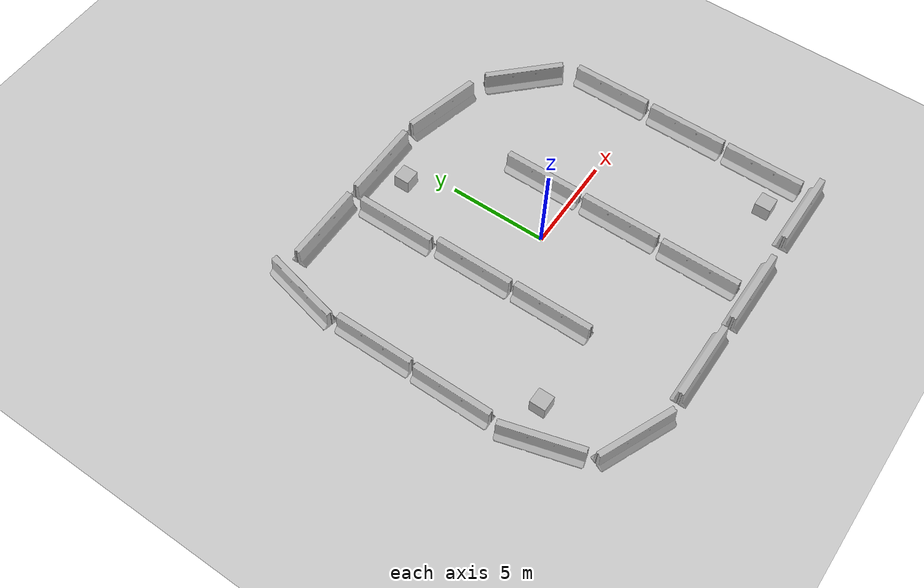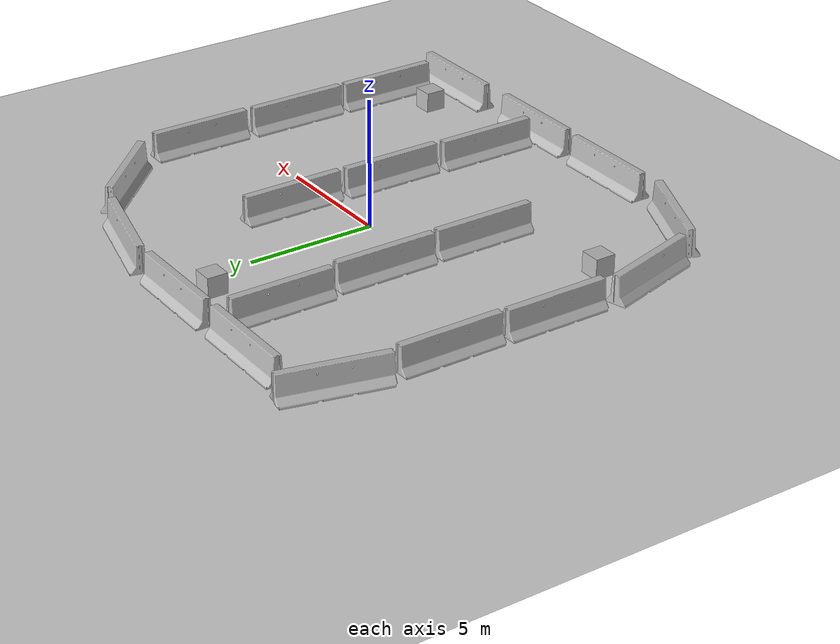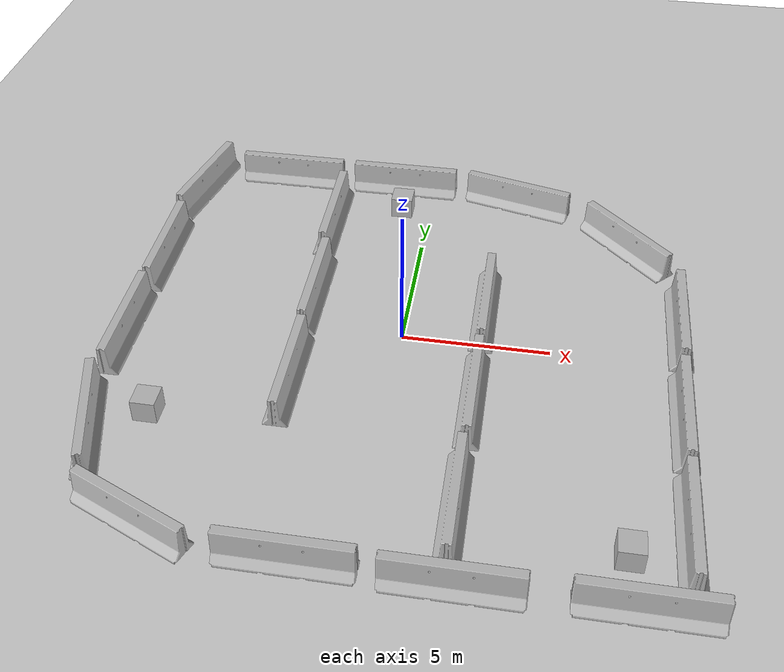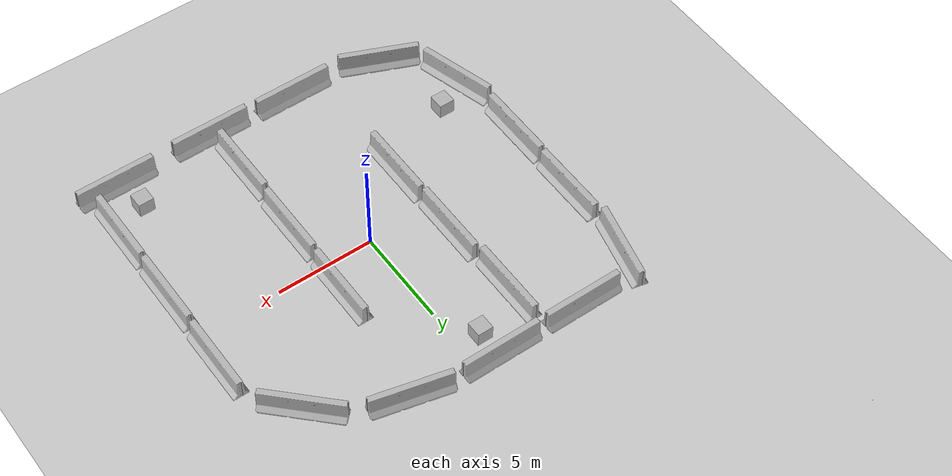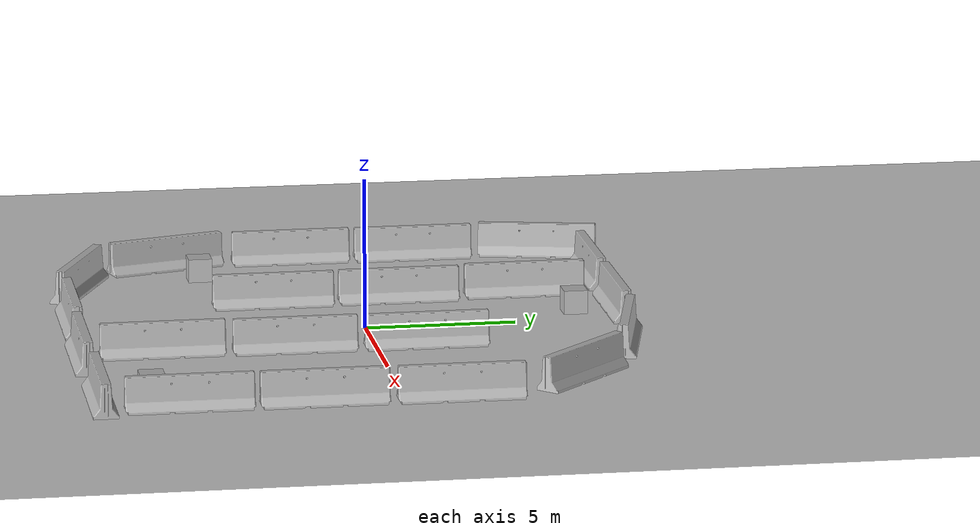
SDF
<sdf version="1.6">
 <world name="default">
  <light name="sun" type="directional">
   <pose>0 0 10 0 -0 0</pose>
   <diffuse>0.8 0.8 0.8 1</diffuse>
   <specular>0.2 0.2 0.2 1</specular>
   <attenuation>
    <range>1000</range>
    <constant>0.9</constant>
    <linear>0.01</linear>
    <quadratic>0.001</quadratic>
   </attenuation>
   <direction>-0.5 0.1 -0.9</direction>
  </light>
  <model name="ground_plane">
   <static>1</static>
   <link name="link">
    <collision name="collision">
     <geometry><plane><normal>0 0 1</normal><size>100 100</size></plane></geometry>
     <surface>
      <contact><collide_bitmask>65535</collide_bitmask></contact>
      <friction><ode><mu>100</mu><mu2>50</mu2></ode></friction>
     </surface>
    </collision>
    <visual name="visual">
     <cast_shadows>0</cast_shadows>
     <geometry><plane><normal>0 0 1</normal><size>100 100</size></plane></geometry>
     <material>
      <script><uri>file://media/materials/scripts/gazebo.material</uri><name>Gazebo/Grey</name></script>
     </material>
    </visual>
   </link>
  </model>
  <gravity>0 0 -9.8</gravity>
  <magnetic_field>6e-06 2.3e-05 -4.2e-05</magnetic_field>
  <atmosphere type="adiabatic"/>
  <physics name="default_physics" default="0" type="ode">
   <max_step_size>0.001</max_step_size>
   <real_time_factor>1</real_time_factor>
   <real_time_update_rate>1000</real_time_update_rate>
  </physics>
  <scene><ambient>0.4 0.4 0.4 1</ambient><background>0.7 0.7 0.7 1</background><shadows>1</shadows></scene>
  <audio><device>default</device></audio>
  <spherical_coordinates>
   <surface_model>EARTH_WGS84</surface_model>
   <latitude_deg>0</latitude_deg>
   <longitude_deg>0</longitude_deg>
   <elevation>0</elevation>
   <heading_deg>0</heading_deg>
  </spherical_coordinates>
  <model name="ball_bearing">
   <link name="link">
    <pose>0 0 0.003 0 -0 0</pose>
    <inertial>
     <mass>0.0011</mass>
     <inertia>
      <ixx>3.96e-09</ixx>
      <ixy>0</ixy>
      <ixz>0</ixz>
      <iyy>3.96e-09</iyy>
      <iyz>0</iyz>
      <izz>3.96e-09</izz>
     </inertia>
    </inertial>
    <collision name="collision">
     <geometry><sphere><radius>0.003</radius></sphere></geometry>
     <surface>
      <contact>
       <poissons_ratio>0.305</poissons_ratio>
       <elastic_modulus>2e+11</elastic_modulus>
       <ode><kp>100000</kp><kd>100</kd><max_vel>100</max_vel><min_depth>0.001</min_depth></ode>
      </contact>
      <friction>
       <torsional>
        <coefficient>1</coefficient>
        <use_patch_radius>0</use_patch_radius>
        <surface_radius>0.01</surface_radius>
       </torsional>
      </friction>
     </surface>
    </collision>
    <visual name="visual">
     <geometry><sphere><radius>0.003</radius></sphere></geometry>
     <material>
      <script><uri>file://media/materials/scripts/gazebo.material</uri><name>Gazebo/Grey</name></script>
     </material>
    </visual>
    <velocity_decay><linear>0</linear><angular>0.005</angular></velocity_decay>
   </link>
   <pose>5.39381 -8.07833 -0.001 0 -0 0</pose>
  </model>
  <model name="ball_bearing_0">
   <link name="link">
    <pose>0 0 0.003 0 -0 0</pose>
    <inertial>
     <mass>0.0011</mass>
     <inertia>
      <ixx>3.96e-09</ixx>
      <ixy>0</ixy>
      <ixz>0</ixz>
      <iyy>3.96e-09</iyy>
      <iyz>0</iyz>
      <izz>3.96e-09</izz>
     </inertia>
    </inertial>
    <collision name="collision">
     <geometry><sphere><radius>0.003</radius></sphere></geometry>
     <surface>
      <contact>
       <poissons_ratio>0.305</poissons_ratio>
       <elastic_modulus>2e+11</elastic_modulus>
       <ode><kp>100000</kp><kd>100</kd><max_vel>100</max_vel><min_depth>0.001</min_depth></ode>
      </contact>
      <friction>
       <torsional>
        <coefficient>1</coefficient>
        <use_patch_radius>0</use_patch_radius>
        <surface_radius>0.01</surface_radius>
       </torsional>
      </friction>
     </surface>
    </collision>
    <visual name="visual">
     <geometry><sphere><radius>0.003</radius></sphere></geometry>
     <material>
      <script><uri>file://media/materials/scripts/gazebo.material</uri><name>Gazebo/Grey</name></script>
     </material>
    </visual>
    <velocity_decay><linear>0</linear><angular>0.005</angular></velocity_decay>
   </link>
   <pose>-12.9691 19.8611 -0.001 0 -0 0</pose>
  </model>
  <model name="jersey_barrier">
   <static>1</static>
   <link name="link">
    <visual name="visual">
     <geometry><mesh><uri>model://jersey_barrier/meshes/jersey_barrier.dae</uri></mesh></geometry>
    </visual>
    <collision name="upright">
     <pose>0 0 0.5715 0 -0 0</pose>
     <geometry><box><size>4.06542 0.3063 1.143</size></box></geometry>
    </collision>
    <collision name="base">
     <pose>0 0 0.032258 0 -0 0</pose>
     <geometry><box><size>4.06542 0.8107 0.064516</size></box></geometry>
    </collision>
    <collision name="base2">
     <pose>0 0 0.1 0 -0 0</pose>
     <geometry><box><size>4.06542 0.65 0.1</size></box></geometry>
    </collision>
    <collision name="base3">
     <pose>0 0 0.2 0 -0 0</pose>
     <geometry><box><size>4.06542 0.5 0.1</size></box></geometry>
    </collision>
    <collision name="left-angle">
     <pose>0 -0.224 0.2401 0.9 -0 0</pose>
     <geometry><box><size>4.06542 0.5 0.064516</size></box></geometry>
    </collision>
    <collision name="right-angle">
     <pose>0 0.224 0.2401 -0.9 0 0</pose>
     <geometry><box><size>4.06542 0.5 0.064516</size></box></geometry>
    </collision>
   </link>
   <pose>-5.69339 8.57902 0 0 -0 0</pose>
  </model>
  <model name="jersey_barrier_0_clone">
   <static>1</static>
   <link name="link">
    <visual name="visual">
     <geometry><mesh><uri>model://jersey_barrier/meshes/jersey_barrier.dae</uri></mesh></geometry>
    </visual>
    <collision name="upright">
     <pose>0 0 0.5715 0 -0 0</pose>
     <geometry><box><size>4.06542 0.3063 1.143</size></box></geometry>
    </collision>
    <collision name="base">
     <pose>0 0 0.032258 0 -0 0</pose>
     <geometry><box><size>4.06542 0.8107 0.064516</size></box></geometry>
    </collision>
    <collision name="base2">
     <pose>0 0 0.1 0 -0 0</pose>
     <geometry><box><size>4.06542 0.65 0.1</size></box></geometry>
    </collision>
    <collision name="base3">
     <pose>0 0 0.2 0 -0 0</pose>
     <geometry><box><size>4.06542 0.5 0.1</size></box></geometry>
    </collision>
    <collision name="left-angle">
     <pose>0 -0.224 0.2401 0.9 -0 0</pose>
     <geometry><box><size>4.06542 0.5 0.064516</size></box></geometry>
    </collision>
    <collision name="right-angle">
     <pose>0 0.224 0.2401 -0.9 0 0</pose>
     <geometry><box><size>4.06542 0.5 0.064516</size></box></geometry>
    </collision>
   </link>
   <pose>-1.16505 8.58859 0 0 -0 0</pose>
  </model>
  <model name="jersey_barrier_0_clone_0">
   <static>1</static>
   <link name="link">
    <visual name="visual">
     <geometry><mesh><uri>model://jersey_barrier/meshes/jersey_barrier.dae</uri></mesh></geometry>
    </visual>
    <collision name="upright">
     <pose>0 0 0.5715 0 -0 0</pose>
     <geometry><box><size>4.06542 0.3063 1.143</size></box></geometry>
    </collision>
    <collision name="base">
     <pose>0 0 0.032258 0 -0 0</pose>
     <geometry><box><size>4.06542 0.8107 0.064516</size></box></geometry>
    </collision>
    <collision name="base2">
     <pose>0 0 0.1 0 -0 0</pose>
     <geometry><box><size>4.06542 0.65 0.1</size></box></geometry>
    </collision>
    <collision name="base3">
     <pose>0 0 0.2 0 -0 0</pose>
     <geometry><box><size>4.06542 0.5 0.1</size></box></geometry>
    </collision>
    <collision name="left-angle">
     <pose>0 -0.224 0.2401 0.9 -0 0</pose>
     <geometry><box><size>4.06542 0.5 0.064516</size></box></geometry>
    </collision>
    <collision name="right-angle">
     <pose>0 0.224 0.2401 -0.9 0 0</pose>
     <geometry><box><size>4.06542 0.5 0.064516</size></box></geometry>
    </collision>
   </link>
   <pose>3.34349 8.14189 0 0 0 -0.238111</pose>
  </model>
  <model name="jersey_barrier_0_clone_1">
   <static>1</static>
   <link name="link">
    <visual name="visual">
     <geometry><mesh><uri>model://jersey_barrier/meshes/jersey_barrier.dae</uri></mesh></geometry>
    </visual>
    <collision name="upright">
     <pose>0 0 0.5715 0 -0 0</pose>
     <geometry><box><size>4.06542 0.3063 1.143</size></box></geometry>
    </collision>
    <collision name="base">
     <pose>0 0 0.032258 0 -0 0</pose>
     <geometry><box><size>4.06542 0.8107 0.064516</size></box></geometry>
    </collision>
    <collision name="base2">
     <pose>0 0 0.1 0 -0 0</pose>
     <geometry><box><size>4.06542 0.65 0.1</size></box></geometry>
    </collision>
    <collision name="base3">
     <pose>0 0 0.2 0 -0 0</pose>
     <geometry><box><size>4.06542 0.5 0.1</size></box></geometry>
    </collision>
    <collision name="left-angle">
     <pose>0 -0.224 0.2401 0.9 -0 0</pose>
     <geometry><box><size>4.06542 0.5 0.064516</size></box></geometry>
    </collision>
    <collision name="right-angle">
     <pose>0 0.224 0.2401 -0.9 0 0</pose>
     <geometry><box><size>4.06542 0.5 0.064516</size></box></geometry>
    </collision>
   </link>
   <pose>7.52123 5.9268 0 0 0 -0.785398</pose>
  </model>
  <model name="jersey_barrier_0_clone_1_clone">
   <static>1</static>
   <link name="link">
    <visual name="visual">
     <geometry><mesh><uri>model://jersey_barrier/meshes/jersey_barrier.dae</uri></mesh></geometry>
    </visual>
    <collision name="upright">
     <pose>0 0 0.5715 0 -0 0</pose>
     <geometry><box><size>4.06542 0.3063 1.143</size></box></geometry>
    </collision>
    <collision name="base">
     <pose>0 0 0.032258 0 -0 0</pose>
     <geometry><box><size>4.06542 0.8107 0.064516</size></box></geometry>
    </collision>
    <collision name="base2">
     <pose>0 0 0.1 0 -0 0</pose>
     <geometry><box><size>4.06542 0.65 0.1</size></box></geometry>
    </collision>
    <collision name="base3">
     <pose>0 0 0.2 0 -0 0</pose>
     <geometry><box><size>4.06542 0.5 0.1</size></box></geometry>
    </collision>
    <collision name="left-angle">
     <pose>0 -0.224 0.2401 0.9 -0 0</pose>
     <geometry><box><size>4.06542 0.5 0.064516</size></box></geometry>
    </collision>
    <collision name="right-angle">
     <pose>0 0.224 0.2401 -0.9 0 0</pose>
     <geometry><box><size>4.06542 0.5 0.064516</size></box></geometry>
    </collision>
   </link>
   <pose>-6.44298 -8.84455 0 0 0 -0.404872</pose>
  </model>
  <model name="jersey_barrier_0_clone_1_clone_1">
   <static>1</static>
   <link name="link">
    <visual name="visual">
     <geometry><mesh><uri>model://jersey_barrier/meshes/jersey_barrier.dae</uri></mesh></geometry>
    </visual>
    <collision name="upright">
     <pose>0 0 0.5715 0 -0 0</pose>
     <geometry><box><size>4.06542 0.3063 1.143</size></box></geometry>
    </collision>
    <collision name="base">
     <pose>0 0 0.032258 0 -0 0</pose>
     <geometry><box><size>4.06542 0.8107 0.064516</size></box></geometry>
    </collision>
    <collision name="base2">
     <pose>0 0 0.1 0 -0 0</pose>
     <geometry><box><size>4.06542 0.65 0.1</size></box></geometry>
    </collision>
    <collision name="base3">
     <pose>0 0 0.2 0 -0 0</pose>
     <geometry><box><size>4.06542 0.5 0.1</size></box></geometry>
    </collision>
    <collision name="left-angle">
     <pose>0 -0.224 0.2401 0.9 -0 0</pose>
     <geometry><box><size>4.06542 0.5 0.064516</size></box></geometry>
    </collision>
    <collision name="right-angle">
     <pose>0 0.224 0.2401 -0.9 0 0</pose>
     <geometry><box><size>4.06542 0.5 0.064516</size></box></geometry>
    </collision>
   </link>
   <pose>-1.80305 -9.50258 0 0 -0 0</pose>
  </model>
  <model name="jersey_barrier_0_clone_1_clone_2">
   <static>1</static>
   <link name="link">
    <visual name="visual">
     <geometry><mesh><uri>model://jersey_barrier/meshes/jersey_barrier.dae</uri></mesh></geometry>
    </visual>
    <collision name="upright">
     <pose>0 0 0.5715 0 -0 0</pose>
     <geometry><box><size>4.06542 0.3063 1.143</size></box></geometry>
    </collision>
    <collision name="base">
     <pose>0 0 0.032258 0 -0 0</pose>
     <geometry><box><size>4.06542 0.8107 0.064516</size></box></geometry>
    </collision>
    <collision name="base2">
     <pose>0 0 0.1 0 -0 0</pose>
     <geometry><box><size>4.06542 0.65 0.1</size></box></geometry>
    </collision>
    <collision name="base3">
     <pose>0 0 0.2 0 -0 0</pose>
     <geometry><box><size>4.06542 0.5 0.1</size></box></geometry>
    </collision>
    <collision name="left-angle">
     <pose>0 -0.224 0.2401 0.9 -0 0</pose>
     <geometry><box><size>4.06542 0.5 0.064516</size></box></geometry>
    </collision>
    <collision name="right-angle">
     <pose>0 0.224 0.2401 -0.9 0 0</pose>
     <geometry><box><size>4.06542 0.5 0.064516</size></box></geometry>
    </collision>
   </link>
   <pose>2.80317 -9.59092 0 0 -0 0</pose>
  </model>
  <model name="jersey_barrier_0_clone_1_clone_3">
   <static>1</static>
   <link name="link">
    <visual name="visual">
     <geometry><mesh><uri>model://jersey_barrier/meshes/jersey_barrier.dae</uri></mesh></geometry>
    </visual>
    <collision name="upright">
     <pose>0 0 0.5715 0 -0 0</pose>
     <geometry><box><size>4.06542 0.3063 1.143</size></box></geometry>
    </collision>
    <collision name="base">
     <pose>0 0 0.032258 0 -0 0</pose>
     <geometry><box><size>4.06542 0.8107 0.064516</size></box></geometry>
    </collision>
    <collision name="base2">
     <pose>0 0 0.1 0 -0 0</pose>
     <geometry><box><size>4.06542 0.65 0.1</size></box></geometry>
    </collision>
    <collision name="base3">
     <pose>0 0 0.2 0 -0 0</pose>
     <geometry><box><size>4.06542 0.5 0.1</size></box></geometry>
    </collision>
    <collision name="left-angle">
     <pose>0 -0.224 0.2401 0.9 -0 0</pose>
     <geometry><box><size>4.06542 0.5 0.064516</size></box></geometry>
    </collision>
    <collision name="right-angle">
     <pose>0 0.224 0.2401 -0.9 0 0</pose>
     <geometry><box><size>4.06542 0.5 0.064516</size></box></geometry>
    </collision>
   </link>
   <pose>8 -9.51568 0 0 -0 0</pose>
  </model>
  <model name="jersey_barrier_1">
   <static>1</static>
   <link name="link">
    <visual name="visual">
     <geometry><mesh><uri>model://jersey_barrier/meshes/jersey_barrier.dae</uri></mesh></geometry>
    </visual>
    <collision name="upright">
     <pose>0 0 0.5715 0 -0 0</pose>
     <geometry><box><size>4.06542 0.3063 1.143</size></box></geometry>
    </collision>
    <collision name="base">
     <pose>0 0 0.032258 0 -0 0</pose>
     <geometry><box><size>4.06542 0.8107 0.064516</size></box></geometry>
    </collision>
    <collision name="base2">
     <pose>0 0 0.1 0 -0 0</pose>
     <geometry><box><size>4.06542 0.65 0.1</size></box></geometry>
    </collision>
    <collision name="base3">
     <pose>0 0 0.2 0 -0 0</pose>
     <geometry><box><size>4.06542 0.5 0.1</size></box></geometry>
    </collision>
    <collision name="left-angle">
     <pose>0 -0.224 0.2401 0.9 -0 0</pose>
     <geometry><box><size>4.06542 0.5 0.064516</size></box></geometry>
    </collision>
    <collision name="right-angle">
     <pose>0 0.224 0.2401 -0.9 0 0</pose>
     <geometry><box><size>4.06542 0.5 0.064516</size></box></geometry>
    </collision>
   </link>
   <pose>9.2386 -6.83486 0 0 -0 1.5708</pose>
  </model>
  <model name="jersey_barrier_1_clone">
   <static>1</static>
   <link name="link">
    <visual name="visual">
     <geometry><mesh><uri>model://jersey_barrier/meshes/jersey_barrier.dae</uri></mesh></geometry>
    </visual>
    <collision name="upright">
     <pose>0 0 0.5715 0 -0 0</pose>
     <geometry><box><size>4.06542 0.3063 1.143</size></box></geometry>
    </collision>
    <collision name="base">
     <pose>0 0 0.032258 0 -0 0</pose>
     <geometry><box><size>4.06542 0.8107 0.064516</size></box></geometry>
    </collision>
    <collision name="base2">
     <pose>0 0 0.1 0 -0 0</pose>
     <geometry><box><size>4.06542 0.65 0.1</size></box></geometry>
    </collision>
    <collision name="base3">
     <pose>0 0 0.2 0 -0 0</pose>
     <geometry><box><size>4.06542 0.5 0.1</size></box></geometry>
    </collision>
    <collision name="left-angle">
     <pose>0 -0.224 0.2401 0.9 -0 0</pose>
     <geometry><box><size>4.06542 0.5 0.064516</size></box></geometry>
    </collision>
    <collision name="right-angle">
     <pose>0 0.224 0.2401 -0.9 0 0</pose>
     <geometry><box><size>4.06542 0.5 0.064516</size></box></geometry>
    </collision>
   </link>
   <pose>9.25333 -2.58397 0 0 -0 1.5708</pose>
  </model>
  <model name="jersey_barrier_1_clone_0">
   <static>1</static>
   <link name="link">
    <visual name="visual">
     <geometry><mesh><uri>model://jersey_barrier/meshes/jersey_barrier.dae</uri></mesh></geometry>
    </visual>
    <collision name="upright">
     <pose>0 0 0.5715 0 -0 0</pose>
     <geometry><box><size>4.06542 0.3063 1.143</size></box></geometry>
    </collision>
    <collision name="base">
     <pose>0 0 0.032258 0 -0 0</pose>
     <geometry><box><size>4.06542 0.8107 0.064516</size></box></geometry>
    </collision>
    <collision name="base2">
     <pose>0 0 0.1 0 -0 0</pose>
     <geometry><box><size>4.06542 0.65 0.1</size></box></geometry>
    </collision>
    <collision name="base3">
     <pose>0 0 0.2 0 -0 0</pose>
     <geometry><box><size>4.06542 0.5 0.1</size></box></geometry>
    </collision>
    <collision name="left-angle">
     <pose>0 -0.224 0.2401 0.9 -0 0</pose>
     <geometry><box><size>4.06542 0.5 0.064516</size></box></geometry>
    </collision>
    <collision name="right-angle">
     <pose>0 0.224 0.2401 -0.9 0 0</pose>
     <geometry><box><size>4.06542 0.5 0.064516</size></box></geometry>
    </collision>
   </link>
   <pose>9.30033 1.74631 0 0 -0 1.5708</pose>
  </model>
  <model name="jersey_barrier_1_clone_1_clone">
   <static>1</static>
   <link name="link">
    <visual name="visual">
     <geometry><mesh><uri>model://jersey_barrier/meshes/jersey_barrier.dae</uri></mesh></geometry>
    </visual>
    <collision name="upright">
     <pose>0 0 0.5715 0 -0 0</pose>
     <geometry><box><size>4.06542 0.3063 1.143</size></box></geometry>
    </collision>
    <collision name="base">
     <pose>0 0 0.032258 0 -0 0</pose>
     <geometry><box><size>4.06542 0.8107 0.064516</size></box></geometry>
    </collision>
    <collision name="base2">
     <pose>0 0 0.1 0 -0 0</pose>
     <geometry><box><size>4.06542 0.65 0.1</size></box></geometry>
    </collision>
    <collision name="base3">
     <pose>0 0 0.2 0 -0 0</pose>
     <geometry><box><size>4.06542 0.5 0.1</size></box></geometry>
    </collision>
    <collision name="left-angle">
     <pose>0 -0.224 0.2401 0.9 -0 0</pose>
     <geometry><box><size>4.06542 0.5 0.064516</size></box></geometry>
    </collision>
    <collision name="right-angle">
     <pose>0 0.224 0.2401 -0.9 0 0</pose>
     <geometry><box><size>4.06542 0.5 0.064516</size></box></geometry>
    </collision>
   </link>
   <pose>-9.24573 2.96433 0 0 -0 1.5708</pose>
  </model>
  <model name="jersey_barrier_1_clone_1_clone_0">
   <static>1</static>
   <link name="link">
    <visual name="visual">
     <geometry><mesh><uri>model://jersey_barrier/meshes/jersey_barrier.dae</uri></mesh></geometry>
    </visual>
    <collision name="upright">
     <pose>0 0 0.5715 0 -0 0</pose>
     <geometry><box><size>4.06542 0.3063 1.143</size></box></geometry>
    </collision>
    <collision name="base">
     <pose>0 0 0.032258 0 -0 0</pose>
     <geometry><box><size>4.06542 0.8107 0.064516</size></box></geometry>
    </collision>
    <collision name="base2">
     <pose>0 0 0.1 0 -0 0</pose>
     <geometry><box><size>4.06542 0.65 0.1</size></box></geometry>
    </collision>
    <collision name="base3">
     <pose>0 0 0.2 0 -0 0</pose>
     <geometry><box><size>4.06542 0.5 0.1</size></box></geometry>
    </collision>
    <collision name="left-angle">
     <pose>0 -0.224 0.2401 0.9 -0 0</pose>
     <geometry><box><size>4.06542 0.5 0.064516</size></box></geometry>
    </collision>
    <collision name="right-angle">
     <pose>0 0.224 0.2401 -0.9 0 0</pose>
     <geometry><box><size>4.06542 0.5 0.064516</size></box></geometry>
    </collision>
   </link>
   <pose>-9.29512 -1.28958 0 0 -0 1.5708</pose>
  </model>
  <model name="jersey_barrier_1_clone_1_clone_2">
   <static>1</static>
   <link name="link">
    <visual name="visual">
     <geometry><mesh><uri>model://jersey_barrier/meshes/jersey_barrier.dae</uri></mesh></geometry>
    </visual>
    <collision name="upright">
     <pose>0 0 0.5715 0 -0 0</pose>
     <geometry><box><size>4.06542 0.3063 1.143</size></box></geometry>
    </collision>
    <collision name="base">
     <pose>0 0 0.032258 0 -0 0</pose>
     <geometry><box><size>4.06542 0.8107 0.064516</size></box></geometry>
    </collision>
    <collision name="base2">
     <pose>0 0 0.1 0 -0 0</pose>
     <geometry><box><size>4.06542 0.65 0.1</size></box></geometry>
    </collision>
    <collision name="base3">
     <pose>0 0 0.2 0 -0 0</pose>
     <geometry><box><size>4.06542 0.5 0.1</size></box></geometry>
    </collision>
    <collision name="left-angle">
     <pose>0 -0.224 0.2401 0.9 -0 0</pose>
     <geometry><box><size>4.06542 0.5 0.064516</size></box></geometry>
    </collision>
    <collision name="right-angle">
     <pose>0 0.224 0.2401 -0.9 0 0</pose>
     <geometry><box><size>4.06542 0.5 0.064516</size></box></geometry>
    </collision>
   </link>
   <pose>-8.93875 -5.65264 0 0 -0 1.85013</pose>
  </model>
  <model name="jersey_barrier_1_clone_1_clone_3">
   <static>1</static>
   <link name="link">
    <visual name="visual">
     <geometry><mesh><uri>model://jersey_barrier/meshes/jersey_barrier.dae</uri></mesh></geometry>
    </visual>
    <collision name="upright">
     <pose>0 0 0.5715 0 -0 0</pose>
     <geometry><box><size>4.06542 0.3063 1.143</size></box></geometry>
    </collision>
    <collision name="base">
     <pose>0 0 0.032258 0 -0 0</pose>
     <geometry><box><size>4.06542 0.8107 0.064516</size></box></geometry>
    </collision>
    <collision name="base2">
     <pose>0 0 0.1 0 -0 0</pose>
     <geometry><box><size>4.06542 0.65 0.1</size></box></geometry>
    </collision>
    <collision name="base3">
     <pose>0 0 0.2 0 -0 0</pose>
     <geometry><box><size>4.06542 0.5 0.1</size></box></geometry>
    </collision>
    <collision name="left-angle">
     <pose>0 -0.224 0.2401 0.9 -0 0</pose>
     <geometry><box><size>4.06542 0.5 0.064516</size></box></geometry>
    </collision>
    <collision name="right-angle">
     <pose>0 0.224 0.2401 -0.9 0 0</pose>
     <geometry><box><size>4.06542 0.5 0.064516</size></box></geometry>
    </collision>
   </link>
   <pose>-3.54589 5.91148 0 0 -0 1.5708</pose>
  </model>
  <model name="jersey_barrier_1_clone_1_clone_4">
   <static>1</static>
   <link name="link">
    <visual name="visual">
     <geometry><mesh><uri>model://jersey_barrier/meshes/jersey_barrier.dae</uri></mesh></geometry>
    </visual>
    <collision name="upright">
     <pose>0 0 0.5715 0 -0 0</pose>
     <geometry><box><size>4.06542 0.3063 1.143</size></box></geometry>
    </collision>
    <collision name="base">
     <pose>0 0 0.032258 0 -0 0</pose>
     <geometry><box><size>4.06542 0.8107 0.064516</size></box></geometry>
    </collision>
    <collision name="base2">
     <pose>0 0 0.1 0 -0 0</pose>
     <geometry><box><size>4.06542 0.65 0.1</size></box></geometry>
    </collision>
    <collision name="base3">
     <pose>0 0 0.2 0 -0 0</pose>
     <geometry><box><size>4.06542 0.5 0.1</size></box></geometry>
    </collision>
    <collision name="left-angle">
     <pose>0 -0.224 0.2401 0.9 -0 0</pose>
     <geometry><box><size>4.06542 0.5 0.064516</size></box></geometry>
    </collision>
    <collision name="right-angle">
     <pose>0 0.224 0.2401 -0.9 0 0</pose>
     <geometry><box><size>4.06542 0.5 0.064516</size></box></geometry>
    </collision>
   </link>
   <pose>-3.35916 1.60745 0 0 -0 1.5708</pose>
  </model>
  <model name="jersey_barrier_1_clone_1_clone_5">
   <static>1</static>
   <link name="link">
    <visual name="visual">
     <geometry><mesh><uri>model://jersey_barrier/meshes/jersey_barrier.dae</uri></mesh></geometry>
    </visual>
    <collision name="upright">
     <pose>0 0 0.5715 0 -0 0</pose>
     <geometry><box><size>4.06542 0.3063 1.143</size></box></geometry>
    </collision>
    <collision name="base">
     <pose>0 0 0.032258 0 -0 0</pose>
     <geometry><box><size>4.06542 0.8107 0.064516</size></box></geometry>
    </collision>
    <collision name="base2">
     <pose>0 0 0.1 0 -0 0</pose>
     <geometry><box><size>4.06542 0.65 0.1</size></box></geometry>
    </collision>
    <collision name="base3">
     <pose>0 0 0.2 0 -0 0</pose>
     <geometry><box><size>4.06542 0.5 0.1</size></box></geometry>
    </collision>
    <collision name="left-angle">
     <pose>0 -0.224 0.2401 0.9 -0 0</pose>
     <geometry><box><size>4.06542 0.5 0.064516</size></box></geometry>
    </collision>
    <collision name="right-angle">
     <pose>0 0.224 0.2401 -0.9 0 0</pose>
     <geometry><box><size>4.06542 0.5 0.064516</size></box></geometry>
    </collision>
   </link>
   <pose>-3.29909 -2.63961 0 0 -0 1.5708</pose>
  </model>
  <model name="jersey_barrier_1_clone_1_clone_6">
   <static>1</static>
   <link name="link">
    <visual name="visual">
     <geometry><mesh><uri>model://jersey_barrier/meshes/jersey_barrier.dae</uri></mesh></geometry>
    </visual>
    <collision name="upright">
     <pose>0 0 0.5715 0 -0 0</pose>
     <geometry><box><size>4.06542 0.3063 1.143</size></box></geometry>
    </collision>
    <collision name="base">
     <pose>0 0 0.032258 0 -0 0</pose>
     <geometry><box><size>4.06542 0.8107 0.064516</size></box></geometry>
    </collision>
    <collision name="base2">
     <pose>0 0 0.1 0 -0 0</pose>
     <geometry><box><size>4.06542 0.65 0.1</size></box></geometry>
    </collision>
    <collision name="base3">
     <pose>0 0 0.2 0 -0 0</pose>
     <geometry><box><size>4.06542 0.5 0.1</size></box></geometry>
    </collision>
    <collision name="left-angle">
     <pose>0 -0.224 0.2401 0.9 -0 0</pose>
     <geometry><box><size>4.06542 0.5 0.064516</size></box></geometry>
    </collision>
    <collision name="right-angle">
     <pose>0 0.224 0.2401 -0.9 0 0</pose>
     <geometry><box><size>4.06542 0.5 0.064516</size></box></geometry>
    </collision>
   </link>
   <pose>2.57197 -6.97458 0 0 -0 1.5708</pose>
  </model>
  <model name="jersey_barrier_1_clone_1_clone_7">
   <static>1</static>
   <link name="link">
    <visual name="visual">
     <geometry><mesh><uri>model://jersey_barrier/meshes/jersey_barrier.dae</uri></mesh></geometry>
    </visual>
    <collision name="upright">
     <pose>0 0 0.5715 0 -0 0</pose>
     <geometry><box><size>4.06542 0.3063 1.143</size></box></geometry>
    </collision>
    <collision name="base">
     <pose>0 0 0.032258 0 -0 0</pose>
     <geometry><box><size>4.06542 0.8107 0.064516</size></box></geometry>
    </collision>
    <collision name="base2">
     <pose>0 0 0.1 0 -0 0</pose>
     <geometry><box><size>4.06542 0.65 0.1</size></box></geometry>
    </collision>
    <collision name="base3">
     <pose>0 0 0.2 0 -0 0</pose>
     <geometry><box><size>4.06542 0.5 0.1</size></box></geometry>
    </collision>
    <collision name="left-angle">
     <pose>0 -0.224 0.2401 0.9 -0 0</pose>
     <geometry><box><size>4.06542 0.5 0.064516</size></box></geometry>
    </collision>
    <collision name="right-angle">
     <pose>0 0.224 0.2401 -0.9 0 0</pose>
     <geometry><box><size>4.06542 0.5 0.064516</size></box></geometry>
    </collision>
   </link>
   <pose>2.6585 -2.66873 0 0 -0 1.5708</pose>
  </model>
  <model name="jersey_barrier_1_clone_1_clone_8">
   <static>1</static>
   <link name="link">
    <visual name="visual">
     <geometry><mesh><uri>model://jersey_barrier/meshes/jersey_barrier.dae</uri></mesh></geometry>
    </visual>
    <collision name="upright">
     <pose>0 0 0.5715 0 -0 0</pose>
     <geometry><box><size>4.06542 0.3063 1.143</size></box></geometry>
    </collision>
    <collision name="base">
     <pose>0 0 0.032258 0 -0 0</pose>
     <geometry><box><size>4.06542 0.8107 0.064516</size></box></geometry>
    </collision>
    <collision name="base2">
     <pose>0 0 0.1 0 -0 0</pose>
     <geometry><box><size>4.06542 0.65 0.1</size></box></geometry>
    </collision>
    <collision name="base3">
     <pose>0 0 0.2 0 -0 0</pose>
     <geometry><box><size>4.06542 0.5 0.1</size></box></geometry>
    </collision>
    <collision name="left-angle">
     <pose>0 -0.224 0.2401 0.9 -0 0</pose>
     <geometry><box><size>4.06542 0.5 0.064516</size></box></geometry>
    </collision>
    <collision name="right-angle">
     <pose>0 0.224 0.2401 -0.9 0 0</pose>
     <geometry><box><size>4.06542 0.5 0.064516</size></box></geometry>
    </collision>
   </link>
   <pose>2.68971 1.63918 0 0 -0 1.5708</pose>
  </model>
  <model name="jersey_barrier_1_clone_1_clone_clone">
   <static>1</static>
   <link name="link">
    <visual name="visual">
     <geometry><mesh><uri>model://jersey_barrier/meshes/jersey_barrier.dae</uri></mesh></geometry>
    </visual>
    <collision name="upright">
     <pose>0 0 0.5715 0 -0 0</pose>
     <geometry><box><size>4.06542 0.3063 1.143</size></box></geometry>
    </collision>
    <collision name="base">
     <pose>0 0 0.032258 0 -0 0</pose>
     <geometry><box><size>4.06542 0.8107 0.064516</size></box></geometry>
    </collision>
    <collision name="base2">
     <pose>0 0 0.1 0 -0 0</pose>
     <geometry><box><size>4.06542 0.65 0.1</size></box></geometry>
    </collision>
    <collision name="base3">
     <pose>0 0 0.2 0 -0 0</pose>
     <geometry><box><size>4.06542 0.5 0.1</size></box></geometry>
    </collision>
    <collision name="left-angle">
     <pose>0 -0.224 0.2401 0.9 -0 0</pose>
     <geometry><box><size>4.06542 0.5 0.064516</size></box></geometry>
    </collision>
    <collision name="right-angle">
     <pose>0 0.224 0.2401 -0.9 0 0</pose>
     <geometry><box><size>4.06542 0.5 0.064516</size></box></geometry>
    </collision>
   </link>
   <pose>-8.99403 7.28459 0 0 -0 1.3458</pose>
  </model>
  <model name="number1">
   <pose>-1.05676 7.1698 0.4 0 -0 0</pose>
   <static>1</static>
   <link name="link">
    <visual name="visual">
     <geometry><mesh><uri>model://number1/meshes/number.dae</uri></mesh></geometry>
     <material>
      <script>
       <uri>model://number1/materials/scripts</uri>
       <uri>model://number1/materials/textures</uri>
       <name>Number/One</name>
      </script>
     </material>
    </visual>
   </link>
  </model>
  <model name="number2">
   <pose>7.52975 -7.85539 0.4 0 -0 0</pose>
   <static>1</static>
   <link name="link">
    <visual name="visual">
     <geometry><mesh><uri>model://number1/meshes/number.dae</uri></mesh></geometry>
     <material>
      <script>
       <uri>model://number2/materials/scripts</uri>
       <uri>model://number2/materials/textures</uri>
       <name>Number/Two</name>
      </script>
     </material>
    </visual>
   </link>
  </model>
  <model name="number3">
   <pose>-7.35494 -4.67641 0.4 0 -0 0</pose>
   <static>1</static>
   <link name="link">
    <visual name="visual">
     <geometry><mesh><uri>model://number1/meshes/number.dae</uri></mesh></geometry>
     <material>
      <script>
       <uri>model://number3/materials/scripts</uri>
       <uri>model://number3/materials/textures</uri>
       <name>Number/Three</name>
      </script>
     </material>
    </visual>
   </link>
  </model>
 </world>
</sdf>
